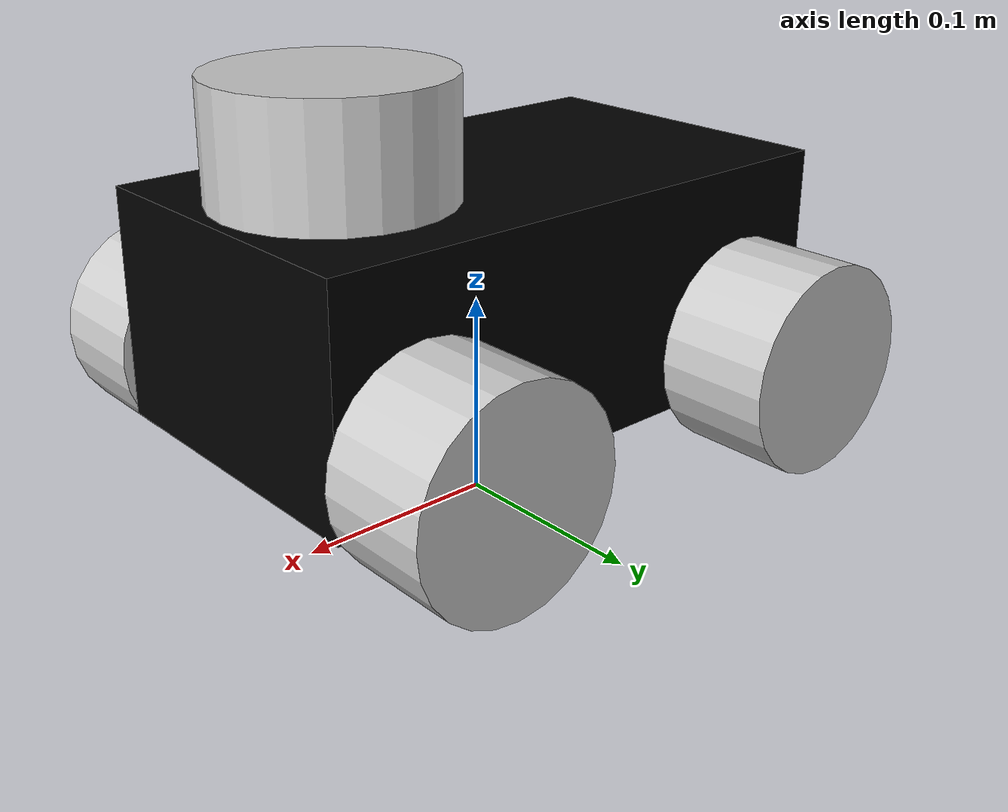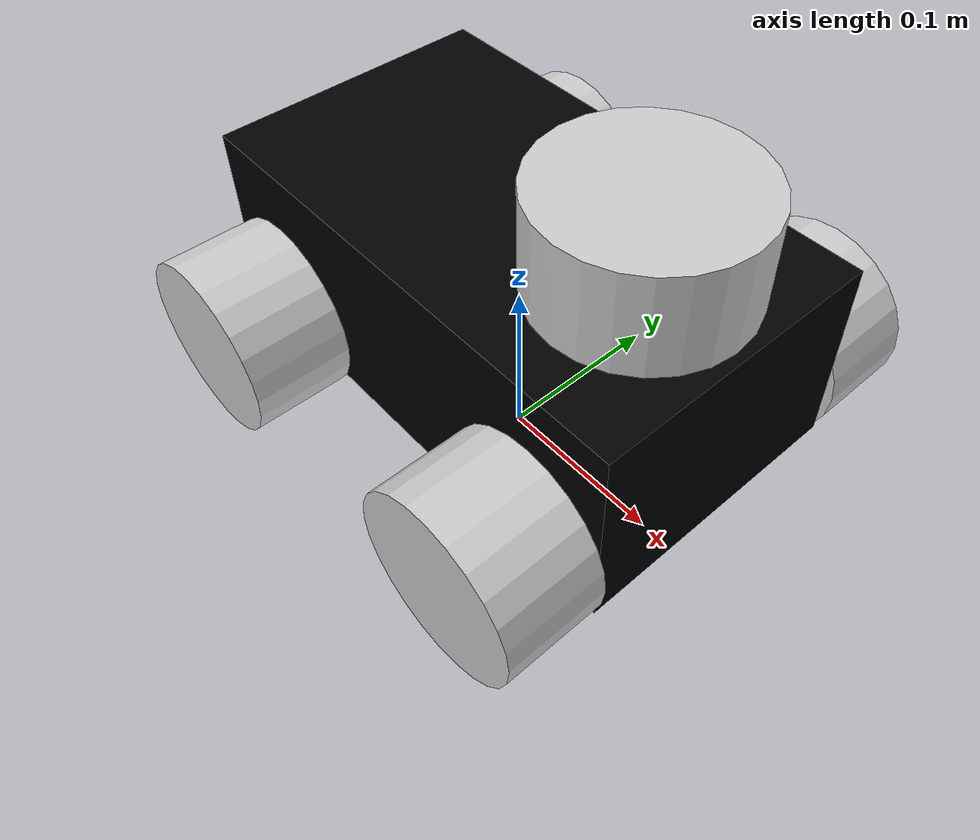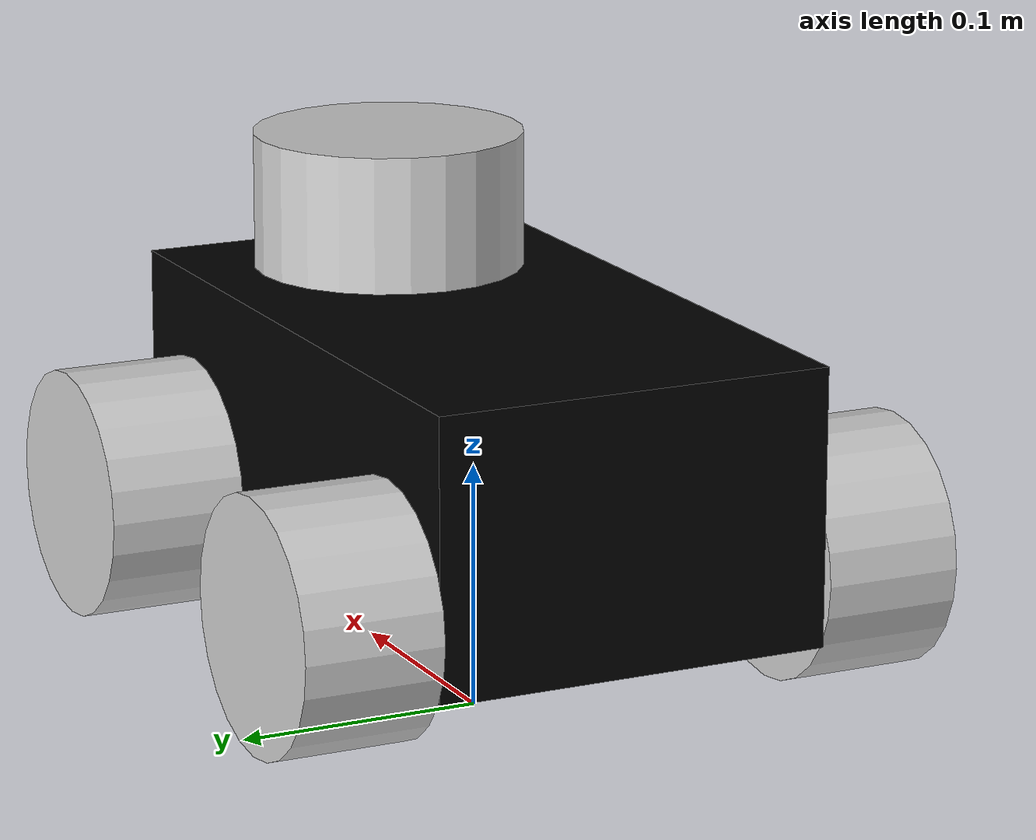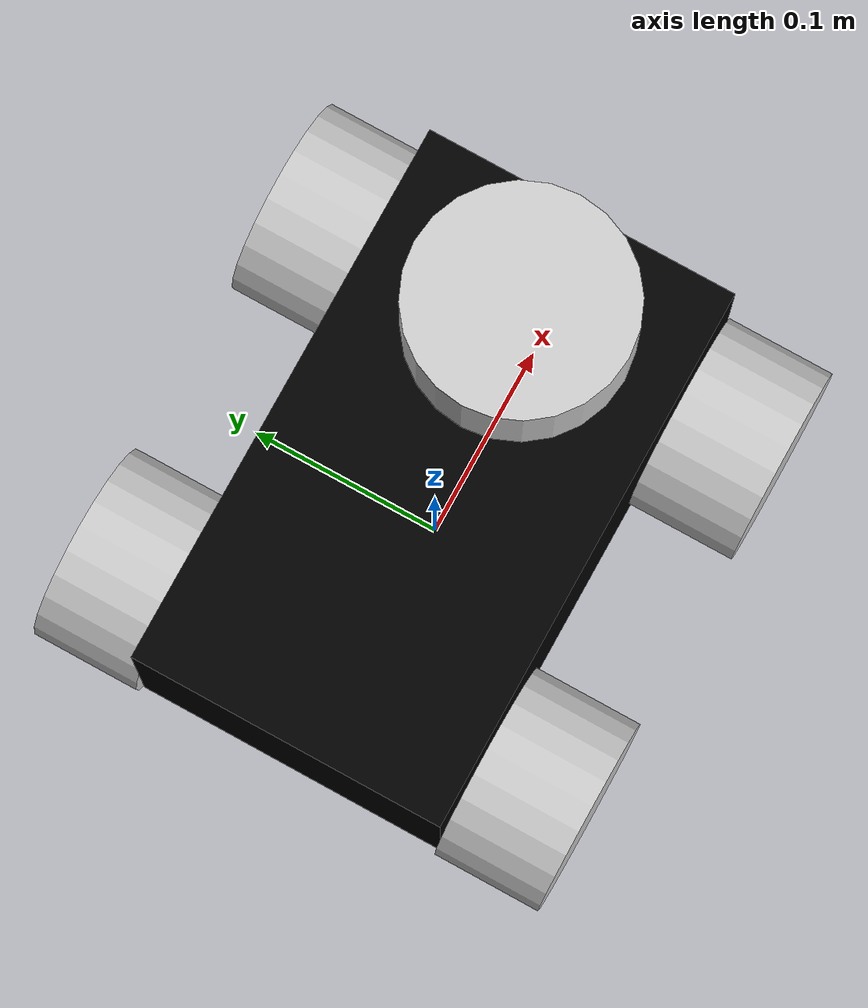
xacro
<?xml version="1.0" ?>

<!-- Creates the model of TOM.E-->
<robot name="tome" xmlns:xacro="http://www.ros.org/wiki/xacro">

<material name="black">
    <color rgba="0 0 0 1"/>
</material>
<material name="grey">
    <color rgba=".8 .8 .8 1"/>
</material>

    <link name="base_footprint">
        <origin rpy="0.0 0.0 0.0" xyz="0.0 0.0 0.0"/>
    </link>

<!-- Creates the body (base_link) of TOM.E-->
    <link name="base_link">
        <visual>
            <geometry>
              <box size="0.28 .16 0.11"/> <!-- L x W x H in meters -->
            </geometry>
            <material name="black"/>
        </visual>
    </link>

    <joint name="baseLinkJoint" type="fixed">
        <origin rpy="0.0 0.0 0.0" xyz="0.0 0.0 0.11"/> <!-- wheel placement -->
        <parent link="base_footprint"/>
        <child link="base_link"/>
    </joint>

    <!-- Creates the front left wheel of TOM.E-->
    <joint name="frontLeftWheelJoint" type="continuous">
        <axis xyz="0 0 1" /> <!-- Revolve around z axis -->
        <origin rpy="0 1.57075 1.57075" xyz="0.095 0.1075 -0.03"/> <!-- wheel placement -->
        <parent link="base_link"/>
        <child link="frontLeftWheelLink"/>
    </joint>

    <link name="frontLeftWheelLink">
        <visual>
            <origin rpy="0 0 0" xyz="0 0 0"/>
            <geometry>
                <cylinder radius="0.05" length="0.055"/>
            </geometry>
            <material name="grey"/>
        </visual>
    </link>

    <!-- Creates the back left wheel of TOM.E-->
    <joint name="backLeftWheelJoint" type="continuous">
        <axis xyz="0 0 1" /> <!-- Revolve around z axis -->
        <origin rpy="0 1.57075 1.57075" xyz="-0.095 0.1075 -0.03"/> <!-- wheel placement -->
        <parent link="base_link"/>
        <child link="backLeftWheelLink"/>
    </joint>

    <link name="backLeftWheelLink">
        <visual>
            <origin rpy="0 0 0" xyz="0 0 0"/>
            <geometry>
                <cylinder radius="0.05" length="0.055"/>
            </geometry>
            <material name="grey"/>
        </visual>
    </link>

    <!-- Creates the front right wheel of TOM.E-->
    <joint name="frontRightWheelJoint" type="continuous">
        <axis xyz="0 0 1" /> <!-- Revolve around z axis -->
        <origin rpy="0 1.57075 1.57075" xyz="0.095 -0.1075 -0.03"/> <!-- wheel placement -->
        <parent link="base_link"/>
        <child link="frontRightWheelLink"/>
    </joint>

    <link name="frontRightWheelLink">
        <visual>
            <origin rpy="0 0 0" xyz="0 0 0"/>
            <geometry>
                <cylinder radius="0.05" length="0.055"/>
            </geometry>
            <material name="grey"/>
        </visual>
    </link>

        <!-- Creates the back right wheel of TOM.E-->
    <joint name="backRightWheelJoint" type="continuous">
        <axis xyz="0 0 1" /> <!-- Revolve around z axis -->
        <origin rpy="0 1.57075 1.57075" xyz="-0.095 -0.1075 -0.03"/> <!-- wheel placement -->
        <parent link="base_link"/>
        <child link="backRightWheelLink"/>
    </joint>

    <link name="backRightWheelLink">
        <visual>
            <origin rpy="0 0 0" xyz="0 0 0"/>
            <geometry>
                <cylinder radius="0.05" length="0.055"/>
            </geometry>
            <material name="grey"/>
        </visual>
    </link>

    <!-- Creates the laser of TOM.E-->
    <joint name="laserJoint" type="continuous">
        <axis xyz="0 0 1" /> <!-- Revolve around z axis -->
        <origin rpy="0 0 3.14" xyz="0.08 0.0 0.0825"/> <!-- laser placement -->
        <parent link="base_link"/>
        <child link="laser"/>
    </joint>

    <link name="laser">
        <visual>
            <origin rpy="0 0 0" xyz="0 0 0"/>
            <geometry>
                <cylinder radius="0.055" length="0.055"/>
            </geometry>
            <material name="grey"/>
        </visual>
    </link>

</robot>
